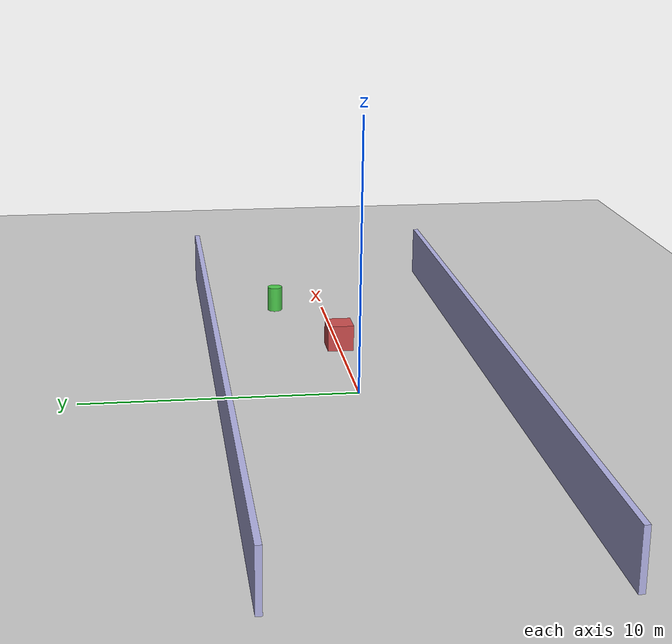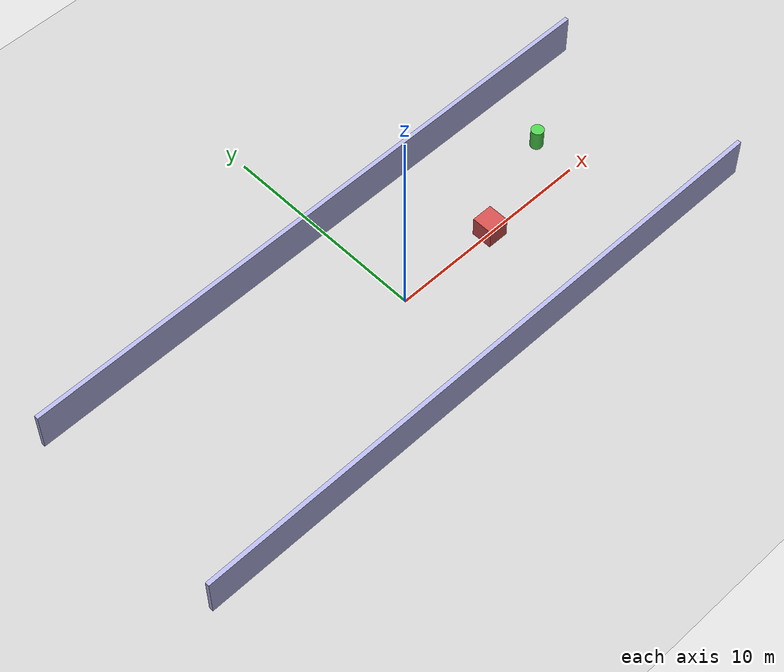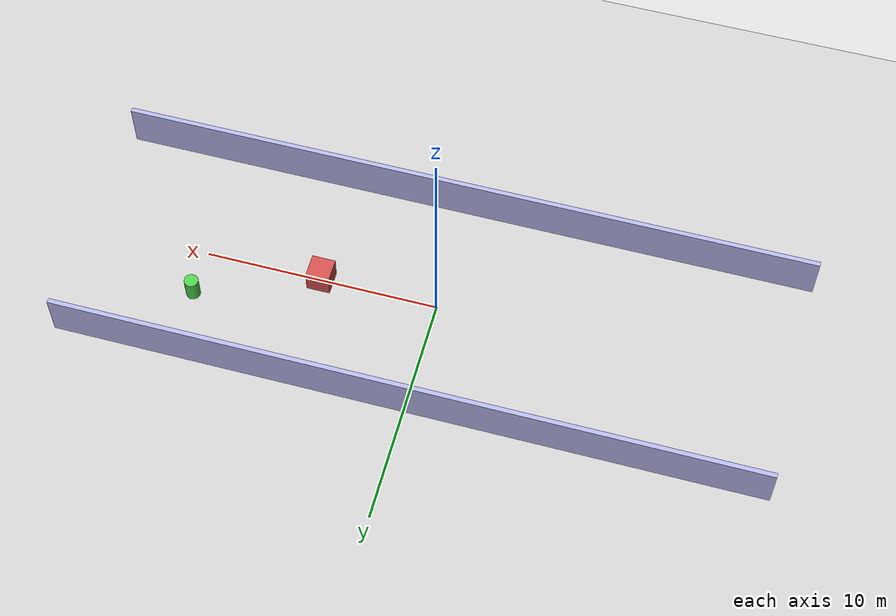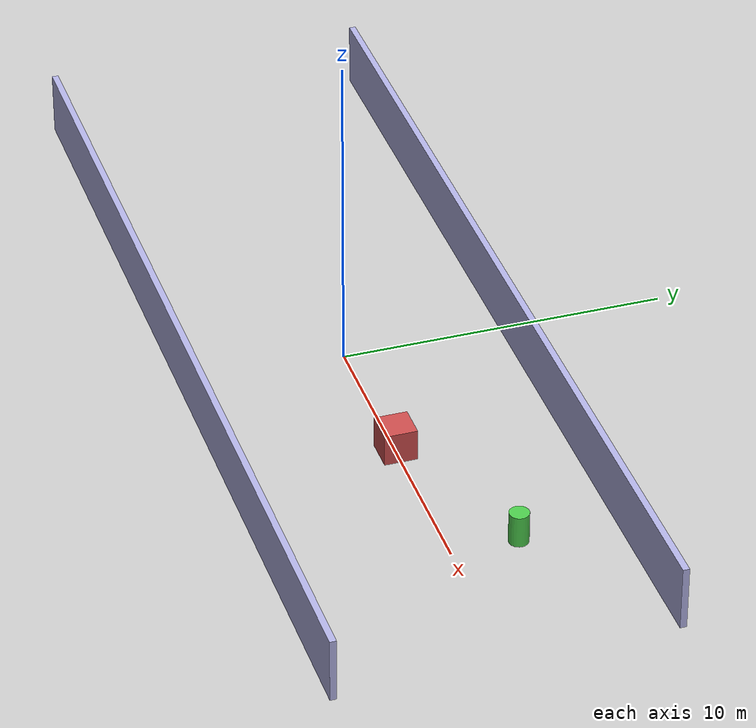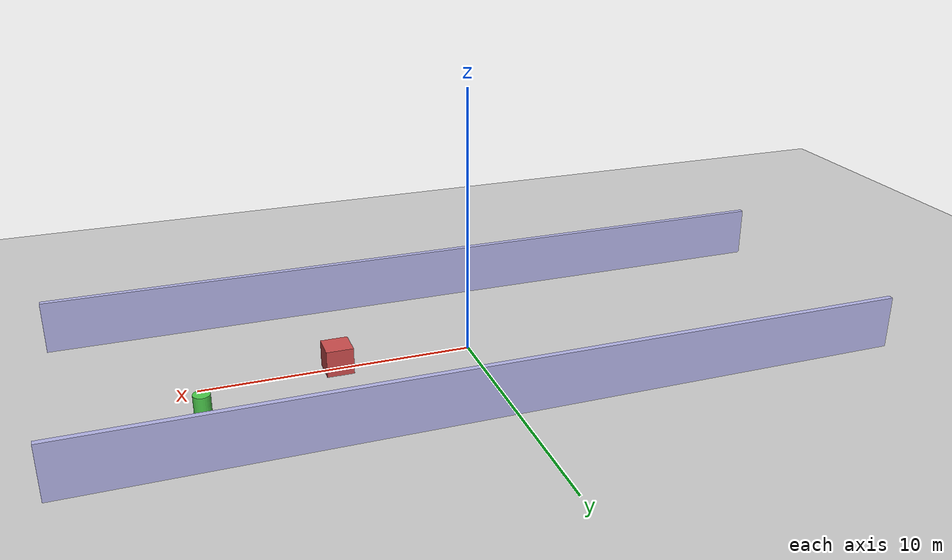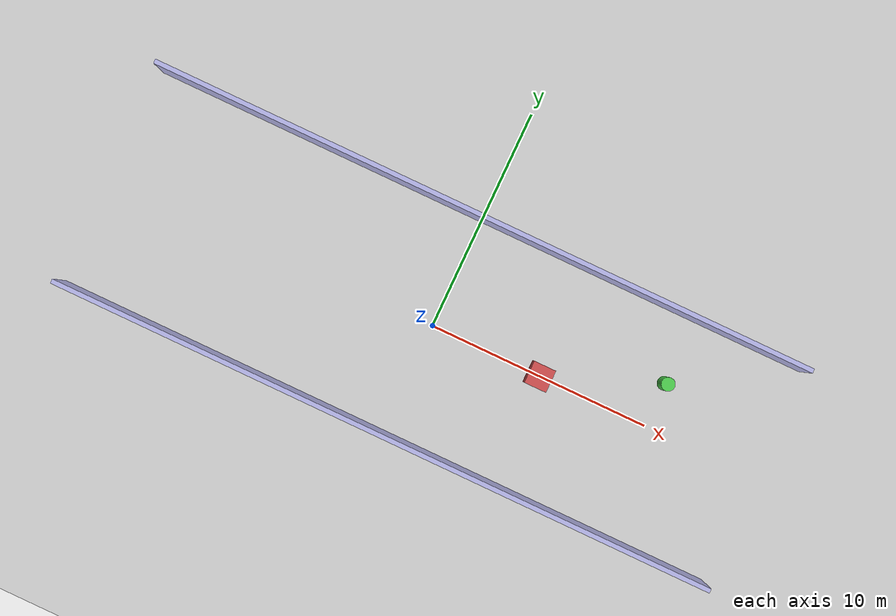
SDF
<sdf version="1.6">
 <world name="test_obstacles">
  <physics type="ode">
   <max_step_size>0.001</max_step_size>
   <real_time_factor>1</real_time_factor>
   <real_time_update_rate>1000</real_time_update_rate>
  </physics>
  <light name="sun" type="directional">
   <pose>0 0 10 0 0 0</pose>
   <diffuse>0.8 0.8 0.8 1</diffuse>
   <specular>0.2 0.2 0.2 1</specular>
   <attenuation>
    <range>1000</range>
    <constant>0.9</constant>
    <linear>0.01</linear>
    <quadratic>0.001</quadratic>
   </attenuation>
   <direction>-0.5 0.1 -0.9</direction>
  </light>
  <model name="ground_plane">
   <static>true</static>
   <link name="link">
    <collision name="collision">
     <geometry><plane><normal>0 0 1</normal><size>100 100</size></plane></geometry>
    </collision>
    <visual name="visual">
     <geometry><plane><normal>0 0 1</normal><size>100 100</size></plane></geometry>
     <material><ambient>0.8 0.8 0.8 1</ambient><diffuse>0.8 0.8 0.8 1</diffuse></material>
    </visual>
   </link>
  </model>
  <model name="left_wall">
   <static>true</static>
   <pose>0 -5 1 0 0 0</pose>
   <link name="link">
    <collision name="collision"><geometry><box><size>30 0.2 2</size></box></geometry></collision>
    <visual name="visual">
     <geometry><box><size>30 0.2 2</size></box></geometry>
     <material><ambient>0.7 0.7 0.9 1</ambient><diffuse>0.7 0.7 0.9 1</diffuse></material>
    </visual>
   </link>
  </model>
  <model name="right_wall">
   <static>true</static>
   <pose>0 5 1 0 0 0</pose>
   <link name="link">
    <collision name="collision"><geometry><box><size>30 0.2 2</size></box></geometry></collision>
    <visual name="visual">
     <geometry><box><size>30 0.2 2</size></box></geometry>
     <material><ambient>0.7 0.7 0.9 1</ambient><diffuse>0.7 0.7 0.9 1</diffuse></material>
    </visual>
   </link>
  </model>
  <model name="obstacle_box_1">
   <static>true</static>
   <pose>5 0 0.5 0 0 0</pose>
   <link name="link">
    <collision name="collision"><geometry><box><size>1.0 1.0 1.0</size></box></geometry></collision>
    <visual name="visual">
     <geometry><box><size>1.0 1.0 1.0</size></box></geometry>
     <material><ambient>0.8 0.3 0.3 1</ambient><diffuse>0.8 0.3 0.3 1</diffuse></material>
    </visual>
   </link>
  </model>
  <model name="obstacle_cylinder_1">
   <static>true</static>
   <pose>10 2 0.5 0 0 0</pose>
   <link name="link">
    <collision name="collision">
     <geometry><cylinder><radius>0.3</radius><length>1.0</length></cylinder></geometry>
    </collision>
    <visual name="visual">
     <geometry><cylinder><radius>0.3</radius><length>1.0</length></cylinder></geometry>
     <material><ambient>0.3 0.8 0.3 1</ambient><diffuse>0.3 0.8 0.3 1</diffuse></material>
    </visual>
   </link>
  </model>
 </world>
</sdf>
